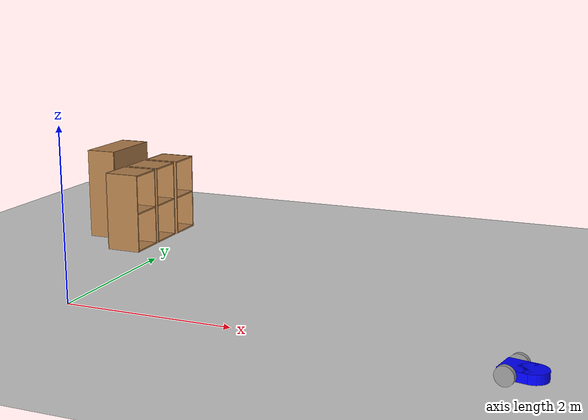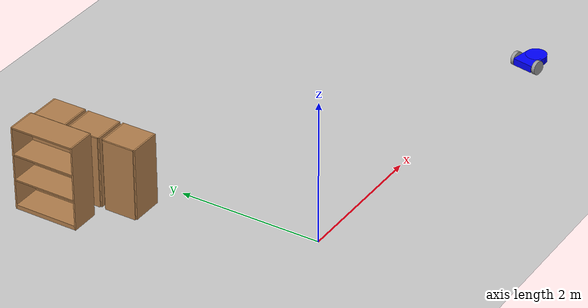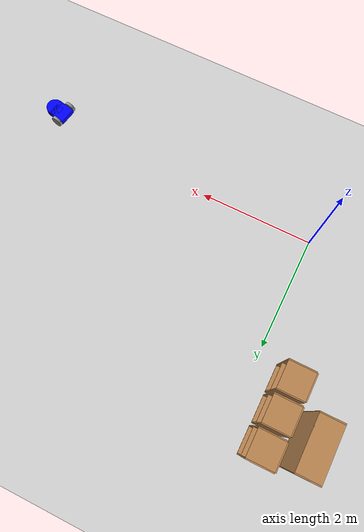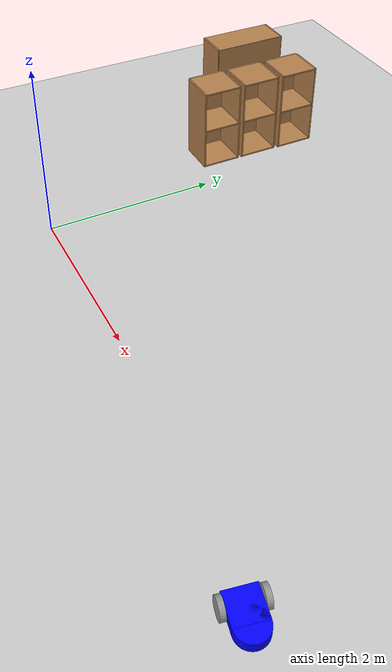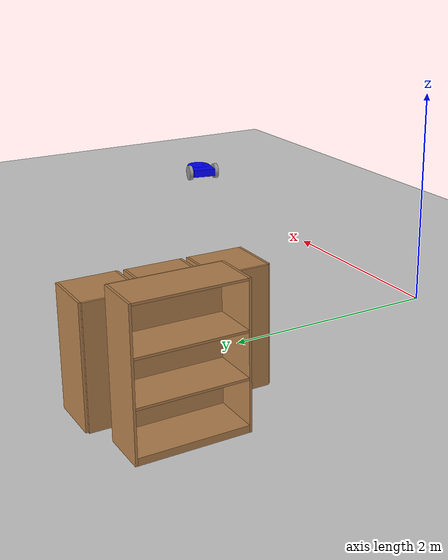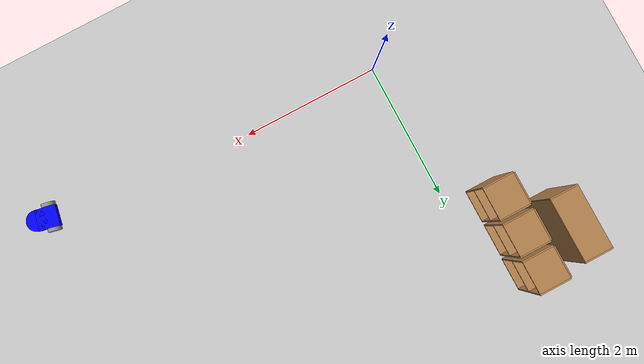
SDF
<sdf version="1.6">
 <world name="default">
  <model name="ground_plane">
   <static>1</static>
   <link name="link">
    <collision name="collision">
     <geometry><plane><normal>0 0 1</normal><size>100 100</size></plane></geometry>
     <surface>
      <contact><collide_bitmask>65535</collide_bitmask></contact>
      <friction><ode><mu>100</mu><mu2>50</mu2></ode></friction>
     </surface>
    </collision>
    <visual name="visual">
     <cast_shadows>0</cast_shadows>
     <geometry><plane><normal>0 0 1</normal><size>100 100</size></plane></geometry>
     <material>
      <script><uri>file://media/materials/scripts/gazebo.material</uri><name>Gazebo/Grey</name></script>
     </material>
    </visual>
   </link>
  </model>
  <model name="cabinet_clone">
   <static>1</static>
   <link name="cabinet_bottom_plate">
    <inertial>
     <pose>0 0 -1 0 -0 0</pose>
     <inertia><ixx>2.05</ixx><ixy>0</ixy><ixz>0</ixz><iyy>2.05</iyy><iyz>0</iyz><izz>2.05</izz></inertia>
     <mass>25</mass>
    </inertial>
    <collision name="cabinet_bottom_plate_geom">
     <pose>0 0 0.01 0 -0 0</pose>
     <geometry><box><size>0.45 0.45 0.02</size></box></geometry>
    </collision>
    <visual name="cabinet_bottom_plate_geom_visual">
     <pose>0 0 0.01 0 -0 0</pose>
     <geometry><box><size>0.45 0.45 0.02</size></box></geometry>
     <material>
      <script><uri>file://media/materials/scripts/gazebo.material</uri><name>Gazebo/Wood</name></script>
     </material>
    </visual>
    <collision name="cabinet_bottom_plate_geom_cabinet_back_plate">
     <pose>0.235 0 0.51 0 -0 0</pose>
     <geometry><box><size>0.02 0.45 1.02</size></box></geometry>
    </collision>
    <visual name="cabinet_bottom_plate_geom_cabinet_back_plate_visual">
     <pose>0.235 0 0.51 0 -0 0</pose>
     <geometry><box><size>0.02 0.45 1.02</size></box></geometry>
     <material>
      <script><uri>file://media/materials/scripts/gazebo.material</uri><name>Gazebo/Wood</name></script>
     </material>
    </visual>
    <collision name="cabinet_bottom_plate_geom_cabinet_left_plate">
     <pose>0 0.235 0.51 0 -0 0</pose>
     <geometry><box><size>0.45 0.02 1.02</size></box></geometry>
    </collision>
    <visual name="cabinet_bottom_plate_geom_cabinet_left_plate_visual">
     <pose>0 0.235 0.51 0 -0 0</pose>
     <geometry><box><size>0.45 0.02 1.02</size></box></geometry>
     <material>
      <script><uri>file://media/materials/scripts/gazebo.material</uri><name>Gazebo/Wood</name></script>
     </material>
    </visual>
    <collision name="cabinet_bottom_plate_geom_cabinet_middle_plate">
     <pose>0 0 0.51 0 -0 0</pose>
     <geometry><box><size>0.45 0.45 0.02</size></box></geometry>
    </collision>
    <visual name="cabinet_bottom_plate_geom_cabinet_middle_plate_visual">
     <pose>0 0 0.51 0 -0 0</pose>
     <geometry><box><size>0.45 0.45 0.02</size></box></geometry>
     <material>
      <script><uri>file://media/materials/scripts/gazebo.material</uri><name>Gazebo/Wood</name></script>
     </material>
    </visual>
    <collision name="cabinet_bottom_plate_geom_cabinet_right_plate">
     <pose>0 -0.235 0.51 0 -0 0</pose>
     <geometry><box><size>0.45 0.02 1.02</size></box></geometry>
    </collision>
    <visual name="cabinet_bottom_plate_geom_cabinet_right_plate_visual">
     <pose>0 -0.235 0.51 0 -0 0</pose>
     <geometry><box><size>0.45 0.02 1.02</size></box></geometry>
     <material>
      <script><uri>file://media/materials/scripts/gazebo.material</uri><name>Gazebo/Wood</name></script>
     </material>
    </visual>
    <collision name="cabinet_bottom_plate_geom_cabinet_top_plate">
     <pose>0 0 1.01 0 -0 0</pose>
     <geometry><box><size>0.45 0.45 0.02</size></box></geometry>
    </collision>
    <visual name="cabinet_bottom_plate_geom_cabinet_top_plate_visual">
     <pose>0 0 1.01 0 -0 0</pose>
     <geometry><box><size>0.45 0.45 0.02</size></box></geometry>
     <material>
      <script><uri>file://media/materials/scripts/gazebo.material</uri><name>Gazebo/Wood</name></script>
     </material>
    </visual>
   </link>
   <pose>-0.559027 2.39605 0 0 -0 3.1415</pose>
  </model>
  <model name="cabinet_clone_0">
   <static>1</static>
   <link name="cabinet_bottom_plate">
    <inertial>
     <pose>0 0 -1 0 -0 0</pose>
     <inertia><ixx>2.05</ixx><ixy>0</ixy><ixz>0</ixz><iyy>2.05</iyy><iyz>0</iyz><izz>2.05</izz></inertia>
     <mass>25</mass>
    </inertial>
    <collision name="cabinet_bottom_plate_geom">
     <pose>0 0 0.01 0 -0 0</pose>
     <geometry><box><size>0.45 0.45 0.02</size></box></geometry>
    </collision>
    <visual name="cabinet_bottom_plate_geom_visual">
     <pose>0 0 0.01 0 -0 0</pose>
     <geometry><box><size>0.45 0.45 0.02</size></box></geometry>
     <material>
      <script><uri>file://media/materials/scripts/gazebo.material</uri><name>Gazebo/Wood</name></script>
     </material>
    </visual>
    <collision name="cabinet_bottom_plate_geom_cabinet_back_plate">
     <pose>0.235 0 0.51 0 -0 0</pose>
     <geometry><box><size>0.02 0.45 1.02</size></box></geometry>
    </collision>
    <visual name="cabinet_bottom_plate_geom_cabinet_back_plate_visual">
     <pose>0.235 0 0.51 0 -0 0</pose>
     <geometry><box><size>0.02 0.45 1.02</size></box></geometry>
     <material>
      <script><uri>file://media/materials/scripts/gazebo.material</uri><name>Gazebo/Wood</name></script>
     </material>
    </visual>
    <collision name="cabinet_bottom_plate_geom_cabinet_left_plate">
     <pose>0 0.235 0.51 0 -0 0</pose>
     <geometry><box><size>0.45 0.02 1.02</size></box></geometry>
    </collision>
    <visual name="cabinet_bottom_plate_geom_cabinet_left_plate_visual">
     <pose>0 0.235 0.51 0 -0 0</pose>
     <geometry><box><size>0.45 0.02 1.02</size></box></geometry>
     <material>
      <script><uri>file://media/materials/scripts/gazebo.material</uri><name>Gazebo/Wood</name></script>
     </material>
    </visual>
    <collision name="cabinet_bottom_plate_geom_cabinet_middle_plate">
     <pose>0 0 0.51 0 -0 0</pose>
     <geometry><box><size>0.45 0.45 0.02</size></box></geometry>
    </collision>
    <visual name="cabinet_bottom_plate_geom_cabinet_middle_plate_visual">
     <pose>0 0 0.51 0 -0 0</pose>
     <geometry><box><size>0.45 0.45 0.02</size></box></geometry>
     <material>
      <script><uri>file://media/materials/scripts/gazebo.material</uri><name>Gazebo/Wood</name></script>
     </material>
    </visual>
    <collision name="cabinet_bottom_plate_geom_cabinet_right_plate">
     <pose>0 -0.235 0.51 0 -0 0</pose>
     <geometry><box><size>0.45 0.02 1.02</size></box></geometry>
    </collision>
    <visual name="cabinet_bottom_plate_geom_cabinet_right_plate_visual">
     <pose>0 -0.235 0.51 0 -0 0</pose>
     <geometry><box><size>0.45 0.02 1.02</size></box></geometry>
     <material>
      <script><uri>file://media/materials/scripts/gazebo.material</uri><name>Gazebo/Wood</name></script>
     </material>
    </visual>
    <collision name="cabinet_bottom_plate_geom_cabinet_top_plate">
     <pose>0 0 1.01 0 -0 0</pose>
     <geometry><box><size>0.45 0.45 0.02</size></box></geometry>
    </collision>
    <visual name="cabinet_bottom_plate_geom_cabinet_top_plate_visual">
     <pose>0 0 1.01 0 -0 0</pose>
     <geometry><box><size>0.45 0.45 0.02</size></box></geometry>
     <material>
      <script><uri>file://media/materials/scripts/gazebo.material</uri><name>Gazebo/Wood</name></script>
     </material>
    </visual>
   </link>
   <pose>-0.558922 2.92629 0 0 -0 3.1415</pose>
  </model>
  <model name="cabinet_clone_1">
   <static>1</static>
   <link name="cabinet_bottom_plate">
    <inertial>
     <pose>0 0 -1 0 -0 0</pose>
     <inertia><ixx>2.05</ixx><ixy>0</ixy><ixz>0</ixz><iyy>2.05</iyy><iyz>0</iyz><izz>2.05</izz></inertia>
     <mass>25</mass>
    </inertial>
    <collision name="cabinet_bottom_plate_geom">
     <pose>0 0 0.01 0 -0 0</pose>
     <geometry><box><size>0.45 0.45 0.02</size></box></geometry>
    </collision>
    <visual name="cabinet_bottom_plate_geom_visual">
     <pose>0 0 0.01 0 -0 0</pose>
     <geometry><box><size>0.45 0.45 0.02</size></box></geometry>
     <material>
      <script><uri>file://media/materials/scripts/gazebo.material</uri><name>Gazebo/Wood</name></script>
     </material>
    </visual>
    <collision name="cabinet_bottom_plate_geom_cabinet_back_plate">
     <pose>0.235 0 0.51 0 -0 0</pose>
     <geometry><box><size>0.02 0.45 1.02</size></box></geometry>
    </collision>
    <visual name="cabinet_bottom_plate_geom_cabinet_back_plate_visual">
     <pose>0.235 0 0.51 0 -0 0</pose>
     <geometry><box><size>0.02 0.45 1.02</size></box></geometry>
     <material>
      <script><uri>file://media/materials/scripts/gazebo.material</uri><name>Gazebo/Wood</name></script>
     </material>
    </visual>
    <collision name="cabinet_bottom_plate_geom_cabinet_left_plate">
     <pose>0 0.235 0.51 0 -0 0</pose>
     <geometry><box><size>0.45 0.02 1.02</size></box></geometry>
    </collision>
    <visual name="cabinet_bottom_plate_geom_cabinet_left_plate_visual">
     <pose>0 0.235 0.51 0 -0 0</pose>
     <geometry><box><size>0.45 0.02 1.02</size></box></geometry>
     <material>
      <script><uri>file://media/materials/scripts/gazebo.material</uri><name>Gazebo/Wood</name></script>
     </material>
    </visual>
    <collision name="cabinet_bottom_plate_geom_cabinet_middle_plate">
     <pose>0 0 0.51 0 -0 0</pose>
     <geometry><box><size>0.45 0.45 0.02</size></box></geometry>
    </collision>
    <visual name="cabinet_bottom_plate_geom_cabinet_middle_plate_visual">
     <pose>0 0 0.51 0 -0 0</pose>
     <geometry><box><size>0.45 0.45 0.02</size></box></geometry>
     <material>
      <script><uri>file://media/materials/scripts/gazebo.material</uri><name>Gazebo/Wood</name></script>
     </material>
    </visual>
    <collision name="cabinet_bottom_plate_geom_cabinet_right_plate">
     <pose>0 -0.235 0.51 0 -0 0</pose>
     <geometry><box><size>0.45 0.02 1.02</size></box></geometry>
    </collision>
    <visual name="cabinet_bottom_plate_geom_cabinet_right_plate_visual">
     <pose>0 -0.235 0.51 0 -0 0</pose>
     <geometry><box><size>0.45 0.02 1.02</size></box></geometry>
     <material>
      <script><uri>file://media/materials/scripts/gazebo.material</uri><name>Gazebo/Wood</name></script>
     </material>
    </visual>
    <collision name="cabinet_bottom_plate_geom_cabinet_top_plate">
     <pose>0 0 1.01 0 -0 0</pose>
     <geometry><box><size>0.45 0.45 0.02</size></box></geometry>
    </collision>
    <visual name="cabinet_bottom_plate_geom_cabinet_top_plate_visual">
     <pose>0 0 1.01 0 -0 0</pose>
     <geometry><box><size>0.45 0.45 0.02</size></box></geometry>
     <material>
      <script><uri>file://media/materials/scripts/gazebo.material</uri><name>Gazebo/Wood</name></script>
     </material>
    </visual>
   </link>
   <pose>-0.550061 3.45827 0 0 -0 3.1415</pose>
  </model>
  <model name="bookshelf_0">
   <static>1</static>
   <link name="link">
    <inertial><mass>1</mass></inertial>
    <collision name="back">
     <pose>0 0.005 0.6 0 -0 0</pose>
     <geometry><box><size>0.9 0.01 1.2</size></box></geometry>
    </collision>
    <visual name="visual1">
     <pose>0 0.005 0.6 0 -0 0</pose>
     <geometry><box><size>0.9 0.01 1.2</size></box></geometry>
     <material>
      <script><uri>file://media/materials/scripts/gazebo.material</uri><name>Gazebo/Wood</name></script>
     </material>
    </visual>
    <collision name="left_side">
     <pose>0.45 -0.195 0.6 0 -0 0</pose>
     <geometry><box><size>0.02 0.4 1.2</size></box></geometry>
    </collision>
    <visual name="visual2">
     <pose>0.45 -0.195 0.6 0 -0 0</pose>
     <geometry><box><size>0.02 0.4 1.2</size></box></geometry>
     <material>
      <script><uri>file://media/materials/scripts/gazebo.material</uri><name>Gazebo/Wood</name></script>
     </material>
    </visual>
    <collision name="right_side">
     <pose>-0.45 -0.195 0.6 0 -0 0</pose>
     <geometry><box><size>0.02 0.4 1.2</size></box></geometry>
    </collision>
    <visual name="visual3">
     <pose>-0.45 -0.195 0.6 0 -0 0</pose>
     <geometry><box><size>0.02 0.4 1.2</size></box></geometry>
     <material>
      <script><uri>file://media/materials/scripts/gazebo.material</uri><name>Gazebo/Wood</name></script>
     </material>
    </visual>
    <collision name="bottom">
     <pose>0 -0.195 0.03 0 -0 0</pose>
     <geometry><box><size>0.88 0.4 0.06</size></box></geometry>
    </collision>
    <visual name="visual4">
     <pose>0 -0.195 0.03 0 -0 0</pose>
     <geometry><box><size>0.88 0.4 0.06</size></box></geometry>
     <material>
      <script><uri>file://media/materials/scripts/gazebo.material</uri><name>Gazebo/Wood</name></script>
     </material>
    </visual>
    <collision name="top">
     <pose>0 -0.195 1.19 0 -0 0</pose>
     <geometry><box><size>0.88 0.4 0.02</size></box></geometry>
    </collision>
    <visual name="visual5">
     <pose>0 -0.195 1.19 0 -0 0</pose>
     <geometry><box><size>0.88 0.4 0.02</size></box></geometry>
     <material>
      <script><uri>file://media/materials/scripts/gazebo.material</uri><name>Gazebo/Wood</name></script>
     </material>
    </visual>
    <collision name="low_shelf">
     <pose>0 -0.195 0.43 0 -0 0</pose>
     <geometry><box><size>0.88 0.4 0.02</size></box></geometry>
    </collision>
    <visual name="visual6">
     <pose>0 -0.195 0.43 0 -0 0</pose>
     <geometry><box><size>0.88 0.4 0.02</size></box></geometry>
     <material>
      <script><uri>file://media/materials/scripts/gazebo.material</uri><name>Gazebo/Wood</name></script>
     </material>
    </visual>
    <collision name="high_shelf">
     <pose>0 -0.195 0.8 0 -0 0</pose>
     <geometry><box><size>0.88 0.4 0.02</size></box></geometry>
    </collision>
    <visual name="visual7">
     <pose>0 -0.195 0.8 0 -0 0</pose>
     <geometry><box><size>0.88 0.4 0.02</size></box></geometry>
     <material>
      <script><uri>file://media/materials/scripts/gazebo.material</uri><name>Gazebo/Wood</name></script>
     </material>
    </visual>
   </link>
   <pose>-0.982099 3.12059 0 0 0 -1.5708</pose>
  </model>
  <model name="robot-03_1">
   <link name="link_0">
    <pose>-4.44604 -7.61761 0.065 0 -0 0</pose>
    <inertial>
     <mass>1</mass>
     <inertia>
      <ixx>0.166667</ixx>
      <ixy>0</ixy>
      <ixz>0</ixz>
      <iyy>0.166667</iyy>
      <iyz>0</iyz>
      <izz>0.166667</izz>
     </inertia>
    </inertial>
    <visual name="visual">
     <geometry><box><size>0.3 0.3 0.1</size></box></geometry>
     <material>
      <lighting>1</lighting>
      <script><uri>file://media/materials/scripts/gazebo.material</uri><name>Gazebo/Grey</name></script>
      <shader type="pixel"><normal_map>__default__</normal_map></shader>
      <ambient>0.03 0.03 0.3 1</ambient>
      <diffuse>0 0 1 1</diffuse>
      <specular>0.01 0.01 0.01 1</specular>
      <emissive>0 0 0 1</emissive>
     </material>
    </visual>
    <collision name="collision">
     <geometry><box><size>0.3 0.3 0.1</size></box></geometry>
     <surface>
      <friction>
       <ode><mu>1</mu><mu2>1</mu2><fdir1>0 0 0</fdir1><slip1>0</slip1><slip2>0</slip2></ode>
       <torsional>
        <coefficient>1</coefficient>
        <patch_radius>0</patch_radius>
        <surface_radius>0</surface_radius>
        <use_patch_radius>1</use_patch_radius>
        <ode><slip>0</slip></ode>
       </torsional>
      </friction>
      <bounce><restitution_coefficient>0</restitution_coefficient><threshold>1e+06</threshold></bounce>
      <contact>
       <collide_without_contact>0</collide_without_contact>
       <collide_without_contact_bitmask>1</collide_without_contact_bitmask>
       <collide_bitmask>1</collide_bitmask>
       <ode>
        <soft_cfm>0</soft_cfm>
        <soft_erp>0.2</soft_erp>
        <kp>1e+13</kp>
        <kd>1</kd>
        <max_vel>0.01</max_vel>
        <min_depth>0</min_depth>
       </ode>
       <bullet>
        <split_impulse>1</split_impulse>
        <split_impulse_penetration_threshold>-0.01</split_impulse_penetration_threshold>
        <soft_cfm>0</soft_cfm>
        <soft_erp>0.2</soft_erp>
        <kp>1e+13</kp>
        <kd>1</kd>
       </bullet>
      </contact>
     </surface>
    </collision>
   </link>
   <link name="link_1">
    <pose>-4.44604 -7.76761 0.065 0 -0 0</pose>
    <inertial>
     <mass>1</mass>
     <inertia><ixx>0.145833</ixx><ixy>0</ixy><ixz>0</ixz><iyy>0.145833</iyy><iyz>0</iyz><izz>0.125</izz></inertia>
    </inertial>
    <visual name="visual">
     <geometry><cylinder><radius>0.15</radius><length>0.1</length></cylinder></geometry>
     <material>
      <lighting>1</lighting>
      <script><uri>file://media/materials/scripts/gazebo.material</uri><name>Gazebo/Grey</name></script>
      <shader type="pixel"><normal_map>__default__</normal_map></shader>
      <ambient>0.03 0.03 0.3 1</ambient>
      <diffuse>0 0 1 1</diffuse>
      <specular>0.01 0.01 0.01 1</specular>
      <emissive>0 0 0 1</emissive>
     </material>
    </visual>
    <collision name="collision">
     <geometry><cylinder><radius>0.15</radius><length>0.1</length></cylinder></geometry>
     <surface>
      <friction>
       <ode><mu>1</mu><mu2>1</mu2><fdir1>0 0 0</fdir1><slip1>0</slip1><slip2>0</slip2></ode>
       <torsional>
        <coefficient>1</coefficient>
        <patch_radius>0</patch_radius>
        <surface_radius>0</surface_radius>
        <use_patch_radius>1</use_patch_radius>
        <ode><slip>0</slip></ode>
       </torsional>
      </friction>
      <bounce><restitution_coefficient>0</restitution_coefficient><threshold>1e+06</threshold></bounce>
      <contact>
       <collide_without_contact>0</collide_without_contact>
       <collide_without_contact_bitmask>1</collide_without_contact_bitmask>
       <collide_bitmask>1</collide_bitmask>
       <ode>
        <soft_cfm>0</soft_cfm>
        <soft_erp>0.2</soft_erp>
        <kp>1e+13</kp>
        <kd>1</kd>
        <max_vel>0.01</max_vel>
        <min_depth>0</min_depth>
       </ode>
       <bullet>
        <split_impulse>1</split_impulse>
        <split_impulse_penetration_threshold>-0.01</split_impulse_penetration_threshold>
        <soft_cfm>0</soft_cfm>
        <soft_erp>0.2</soft_erp>
        <kp>1e+13</kp>
        <kd>1</kd>
       </bullet>
      </contact>
     </surface>
    </collision>
   </link>
   <link name="link_2">
    <pose>-4.44604 -7.76761 0.015 0 -0 0</pose>
    <inertial>
     <mass>1</mass>
     <inertia><ixx>0.1</ixx><ixy>0</ixy><ixz>0</ixz><iyy>0.1</iyy><iyz>0</iyz><izz>0.1</izz></inertia>
    </inertial>
    <visual name="visual">
     <geometry><sphere><radius>0.05</radius></sphere></geometry>
     <material>
      <lighting>1</lighting>
      <script><uri>file://media/materials/scripts/gazebo.material</uri><name>Gazebo/Grey</name></script>
      <shader type="pixel"><normal_map>__default__</normal_map></shader>
      <ambient>0.5 0.5 0.5 1</ambient>
      <diffuse>0.9 0.9 0.9 1</diffuse>
      <specular>0.01 0.01 0.01 1</specular>
      <emissive>0 0 0 1</emissive>
     </material>
    </visual>
    <collision name="collision">
     <geometry><sphere><radius>0.05</radius></sphere></geometry>
     <surface>
      <friction>
       <ode><mu>1</mu><mu2>1</mu2><fdir1>0 0 0</fdir1><slip1>0</slip1><slip2>0</slip2></ode>
       <torsional>
        <coefficient>1</coefficient>
        <patch_radius>0</patch_radius>
        <surface_radius>0</surface_radius>
        <use_patch_radius>1</use_patch_radius>
        <ode><slip>0</slip></ode>
       </torsional>
      </friction>
      <bounce><restitution_coefficient>0</restitution_coefficient><threshold>1e+06</threshold></bounce>
      <contact>
       <collide_without_contact>0</collide_without_contact>
       <collide_without_contact_bitmask>1</collide_without_contact_bitmask>
       <collide_bitmask>1</collide_bitmask>
       <ode>
        <soft_cfm>0</soft_cfm>
        <soft_erp>0.2</soft_erp>
        <kp>1e+13</kp>
        <kd>1</kd>
        <max_vel>0.01</max_vel>
        <min_depth>0</min_depth>
       </ode>
       <bullet>
        <split_impulse>1</split_impulse>
        <split_impulse_penetration_threshold>-0.01</split_impulse_penetration_threshold>
        <soft_cfm>0</soft_cfm>
        <soft_erp>0.2</soft_erp>
        <kp>1e+13</kp>
        <kd>1</kd>
       </bullet>
      </contact>
     </surface>
    </collision>
   </link>
   <link name="link_3">
    <pose>-4.62604 -7.56761 0.065 3.14159 1.56351 3.14159</pose>
    <inertial>
     <mass>1</mass>
     <inertia><ixx>0.145833</ixx><ixy>0</ixy><ixz>0</ixz><iyy>0.145833</iyy><iyz>0</iyz><izz>0.125</izz></inertia>
    </inertial>
    <visual name="visual">
     <geometry><cylinder><radius>0.1</radius><length>0.05</length></cylinder></geometry>
     <material>
      <lighting>1</lighting>
      <script><uri>file://media/materials/scripts/gazebo.material</uri><name>Gazebo/Grey</name></script>
      <shader type="pixel"><normal_map>__default__</normal_map></shader>
      <ambient>0.2 0.2 0.2 1</ambient>
      <diffuse>0.5 0.5 0.5 1</diffuse>
      <specular>0.01 0.01 0.01 1</specular>
      <emissive>0 0 0 1</emissive>
     </material>
    </visual>
    <collision name="collision">
     <geometry><cylinder><radius>0.1</radius><length>0.05</length></cylinder></geometry>
     <surface>
      <friction>
       <ode><mu>1</mu><mu2>1</mu2><fdir1>0 0 0</fdir1><slip1>0</slip1><slip2>0</slip2></ode>
       <torsional>
        <coefficient>1</coefficient>
        <patch_radius>0</patch_radius>
        <surface_radius>0</surface_radius>
        <use_patch_radius>1</use_patch_radius>
        <ode><slip>0</slip></ode>
       </torsional>
      </friction>
      <bounce><restitution_coefficient>0</restitution_coefficient><threshold>1e+06</threshold></bounce>
      <contact>
       <collide_without_contact>0</collide_without_contact>
       <collide_without_contact_bitmask>1</collide_without_contact_bitmask>
       <collide_bitmask>1</collide_bitmask>
       <ode>
        <soft_cfm>0</soft_cfm>
        <soft_erp>0.2</soft_erp>
        <kp>1e+13</kp>
        <kd>1</kd>
        <max_vel>0.01</max_vel>
        <min_depth>0</min_depth>
       </ode>
       <bullet>
        <split_impulse>1</split_impulse>
        <split_impulse_penetration_threshold>-0.01</split_impulse_penetration_threshold>
        <soft_cfm>0</soft_cfm>
        <soft_erp>0.2</soft_erp>
        <kp>1e+13</kp>
        <kd>1</kd>
       </bullet>
      </contact>
     </surface>
    </collision>
   </link>
   <link name="link_3_clone">
    <pose>-4.26604 -7.56761 0.065 3.14159 1.56351 3.14159</pose>
    <inertial>
     <mass>1</mass>
     <inertia><ixx>0.145833</ixx><ixy>0</ixy><ixz>0</ixz><iyy>0.145833</iyy><iyz>0</iyz><izz>0.125</izz></inertia>
    </inertial>
    <visual name="visual">
     <geometry><cylinder><radius>0.1</radius><length>0.05</length></cylinder></geometry>
     <material>
      <lighting>1</lighting>
      <script><uri>file://media/materials/scripts/gazebo.material</uri><name>Gazebo/Grey</name></script>
      <shader type="pixel"><normal_map>__default__</normal_map></shader>
      <ambient>0.2 0.2 0.2 1</ambient>
      <diffuse>0.5 0.5 0.5 1</diffuse>
      <specular>0.01 0.01 0.01 1</specular>
      <emissive>0 0 0 1</emissive>
     </material>
    </visual>
    <collision name="collision">
     <geometry><cylinder><radius>0.1</radius><length>0.05</length></cylinder></geometry>
     <surface>
      <friction>
       <ode><mu>1</mu><mu2>1</mu2><fdir1>0 0 0</fdir1><slip1>0</slip1><slip2>0</slip2></ode>
       <torsional>
        <coefficient>1</coefficient>
        <patch_radius>0</patch_radius>
        <surface_radius>0</surface_radius>
        <use_patch_radius>1</use_patch_radius>
        <ode><slip>0</slip></ode>
       </torsional>
      </friction>
      <bounce><restitution_coefficient>0</restitution_coefficient><threshold>1e+06</threshold></bounce>
      <contact>
       <collide_without_contact>0</collide_without_contact>
       <collide_without_contact_bitmask>1</collide_without_contact_bitmask>
       <collide_bitmask>1</collide_bitmask>
       <ode>
        <soft_cfm>0</soft_cfm>
        <soft_erp>0.2</soft_erp>
        <kp>1e+13</kp>
        <kd>1</kd>
        <max_vel>0.01</max_vel>
        <min_depth>0</min_depth>
       </ode>
       <bullet>
        <split_impulse>1</split_impulse>
        <split_impulse_penetration_threshold>-0.01</split_impulse_penetration_threshold>
        <soft_cfm>0</soft_cfm>
        <soft_erp>0.2</soft_erp>
        <kp>1e+13</kp>
        <kd>1</kd>
       </bullet>
      </contact>
     </surface>
    </collision>
   </link>
   <joint name="link_0_JOINT_1" type="fixed">
    <parent>link_0</parent>
    <child>link_1</child>
    <physics>
     <ode><limit><cfm>0</cfm><erp>0.2</erp></limit><suspension><cfm>0</cfm><erp>0.2</erp></suspension></ode>
    </physics>
   </joint>
   <joint name="link_0_JOINT_3" type="revolute">
    <parent>link_0</parent>
    <child>link_3</child>
    <axis>
     <xyz>0 0 1</xyz>
     <use_parent_model_frame>0</use_parent_model_frame>
     <limit>
      <lower>-1.79769e+308</lower>
      <upper>1.79769e+308</upper>
      <effort>-1</effort>
      <velocity>-1</velocity>
     </limit>
     <dynamics>
      <spring_reference>0</spring_reference>
      <spring_stiffness>0</spring_stiffness>
      <damping>0</damping>
      <friction>0</friction>
     </dynamics>
    </axis>
    <physics>
     <ode><limit><cfm>0</cfm><erp>0.2</erp></limit><suspension><cfm>0</cfm><erp>0.2</erp></suspension></ode>
    </physics>
   </joint>
   <joint name="link_0_JOINT_4" type="revolute">
    <parent>link_0</parent>
    <child>link_3_clone</child>
    <axis>
     <xyz>0 0 1</xyz>
     <use_parent_model_frame>0</use_parent_model_frame>
     <limit>
      <lower>-1.79769e+308</lower>
      <upper>1.79769e+308</upper>
      <effort>-1</effort>
      <velocity>-1</velocity>
     </limit>
     <dynamics>
      <spring_reference>0</spring_reference>
      <spring_stiffness>0</spring_stiffness>
      <damping>0</damping>
      <friction>0</friction>
     </dynamics>
    </axis>
    <physics>
     <ode><limit><cfm>0</cfm><erp>0.2</erp></limit><suspension><cfm>0</cfm><erp>0.2</erp></suspension></ode>
    </physics>
   </joint>
   <joint name="link_1_JOINT_2" type="fixed">
    <parent>link_1</parent>
    <child>link_2</child>
    <physics>
     <ode><limit><cfm>0</cfm><erp>0.2</erp></limit><suspension><cfm>0</cfm><erp>0.2</erp></suspension></ode>
    </physics>
   </joint>
   <static>0</static>
   <pose>-1.5952 5.57808 0.041987 0.000899 -2e-06 1.37396</pose>
  </model>
 </world>
</sdf>
